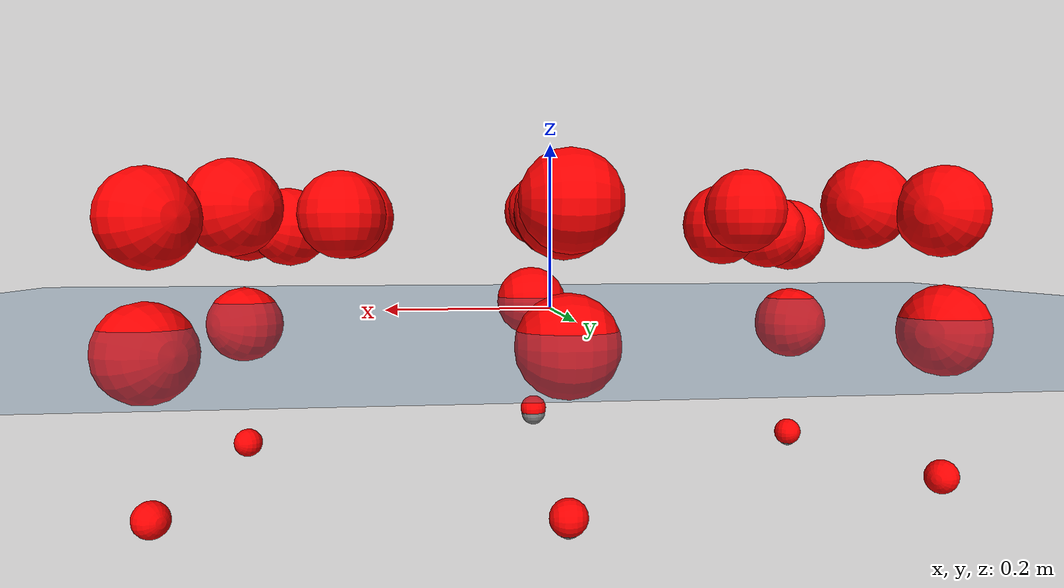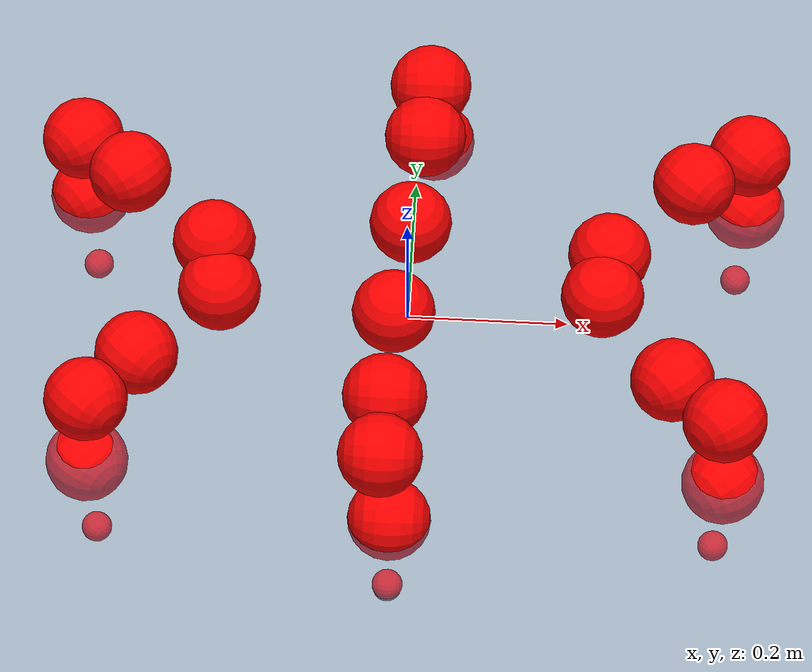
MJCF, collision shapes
<mujoco model="Golem">
  <compiler angle="radian" assetdir="assets" balanceinertia="true" inertiafromgeom="false"/>

  <option timestep="0.005" density="1.2" viscosity="2e-05"/>

  <size nkey="1"/>

  <visual>
    <quality shadowsize="8192"/>
    <map shadowclip="0.5"/>
  </visual>

  <default>
    <default class="/">
      <joint armature="0.01" damping="0.01" frictionloss="0.01"/>
      <geom contype="0" conaffinity="0" group="1" solref="-1000 -80"/>
      <site size="0.01 0.005 0.005" group="5"/>
      <general forcelimited="true" biastype="affine" gainprm="25" biasprm="0 -25 -0.5"/>
      <default class="visual">
        <geom type="mesh" group="2"/>
      </default>
      <default class="collision">
        <geom group="3"/>
      </default>
      <default class="foot">
        <geom size="0.01 0 0" condim="6" group="4" priority="1" solimp="0.015 1 0.01"/>
      </default>
      <default class="reward_collision_sphere">
        <geom group="5" rgba="1 0 0 1"/>
      </default>
    </default>
  </default>

  <asset>
    <texture type="skybox" colorspace="auto" name="//unnamed_texture_0" builtin="gradient" rgb1="0.95 0.95 0.95" rgb2="0.95 0.95 0.95" width="100" height="600"/>
    <texture type="2d" colorspace="auto" name="texplane" builtin="checker" rgb1="0.345 0.575 0.748" rgb2="0.345 0.575 0.748" markrgb="1 1 1" width="512" height="512"/>
    <material name="MatPlane" class="/" texture="texplane" texuniform="true" texrepeat="2 2" specular="0.9"/>
    <mesh name="body" class="/" file="body.stl" scale="0.001 0.001 0.001"/>
    <mesh name="coxa" class="/" file="coxa.stl" scale="0.001 0.001 0.001"/>
    <mesh name="femur" class="/" file="femur.stl" scale="0.001 0.001 0.001"/>
    <mesh name="tibia" class="/" file="tibia.stl" scale="0.001 0.001 0.001"/>
    <mesh name="tarsus" class="/" file="tarsus.stl" scale="0.001 0.001 0.001"/>
  </asset>

  <worldbody>
    <geom name="floor" class="/" size="100 100 0.125" type="plane" group="0" material="MatPlane"/>
    <light name="toplight_shadow" class="/" pos="0 0 5" dir="0.0990148 0.0990148 -0.990148" type="directional" ambient="0.04 0.04 0.04" diffuse="0.55 0.55 0.55" specular="0.12 0.12 0.12"/>
    <light name="toplight_fill" class="/" pos="0 0 5" dir="0.0990148 0.0990148 -0.990148" type="directional" castshadow="false" ambient="0.04 0.04 0.04" diffuse="0.3 0.3 0.3" specular="0.08 0.08 0.08"/>
    <body name="trunk" pos="-0.00172717 -2.44748e-05 0.0116776" quat="0.999996 0.00103365 0.00269471 0.000504279">
      <inertial pos="0.000591808 -0.00956202 0.00986857" quat="0.999666 0.0235518 0.00849805 -0.00637859" mass="6.65509" diaginertia="0.0725075 0.00273062 0.0681849"/>
      <joint name="//unnamed_joint_0" type="free"/>
      <geom name="//unnamed_geom_1" class="/" pos="0 0 0.0975087" quat="1 0 0 0" type="mesh" rgba="0.9 0.9 0.9 1" mesh="body"/>
      <site name="imu" class="/" pos="0.227041 0.00154701 0.100812" size="0.0127892"/>
      <camera name="track" class="/" pos="0 -1.56221 0" quat="0.707107 0.707107 0 0" mode="trackcom"/>
      <camera name="ego_camera" class="/" pos="0.199171 0 0.152357" quat="-0.5 -0.5 0.5 0.5"/>
      <body name="coxa_RR" pos="-0.261356 -0.0690693 0.0915263" quat="0.379006 0.00154946 -0.00518258 -0.925379">
        <inertial pos="0.0128619 0.00744774 -0.000209456" quat="0.998628 0.0523443 -0.000777403 0.000962507" mass="0.386556" diaginertia="0.083915 0.00285677 0.0942229"/>
        <joint name="coxa_joint_RR" class="/" pos="0 0 0" axis="-0.00508272 0.000926074 -0.999987" range="-3.02211 3.1039" armature="0.0149591" damping="0" frictionloss="0.00606112"/>
        <geom name="//unnamed_geom_2" class="/" type="mesh" rgba="0.2 0.2 0.2 1" mesh="coxa"/>
        <geom name="//unnamed_geom_3" class="reward_collision_sphere" size="0.0511569" pos="-0.0459626 0 0"/>
        <body name="femur_RR" pos="0.08632 -0.000277582 -0.00773276" quat="0.499964 -0.50015 0.499853 0.500033">
          <inertial pos="-0.000347769 0.00493119 -0.0115587" quat="0.999999 0.000918793 -0.000126476 0.000378539" mass="0.423087" diaginertia="0.086487 0.0029139 0.0953278"/>
          <joint name="femur_joint_RR" class="/" pos="0 0 0" axis="0.0513583 0.011785 -0.998611" stiffness="0.0132707" range="-3.20888 3.10986" armature="0.0164105" damping="0.027974" frictionloss="0.0152063"/>
          <geom name="//unnamed_geom_4" class="/" type="mesh" rgba="0.9 0.9 0.9 1" mesh="femur"/>
          <geom name="//unnamed_geom_5" class="reward_collision_sphere" size="0.0511569"/>
          <body name="tibia_RR" pos="0.00541699 -0.0859139 0.0075919" quat="-5.28936e-06 1 -4.18619e-06 -4.76677e-06">
            <inertial pos="0.00563607 -0.0106569 0.0116411" quat="0.998572 -0.0380442 0.0374755 0.0012004" mass="0.451007" diaginertia="0.102528 0.00317291 0.0863054"/>
            <joint name="tibia_joint_RR" class="/" pos="0 0 0" axis="0.00318221 -0.00221016 0.999992" stiffness="0.000103439" range="-3.1332 3.31217" armature="0.0121912" damping="0" frictionloss="0.0122078"/>
            <geom name="//unnamed_geom_6" class="/" type="mesh" rgba="0.2 0.2 0.2 1" mesh="tibia"/>
            <geom name="//unnamed_geom_7" class="reward_collision_sphere" size="0.0511569"/>
            <body name="tarsus_RR" pos="0.130193 0.0110976 -0.000855027" quat="0.999984 0.00540245 0.000567349 -0.00122164">
              <inertial pos="0.0877866 0.0125823 -0.00481399" quat="0.496528 0.505981 0.504399 0.492976" mass="0.436558" diaginertia="0.083045 0.00232551 0.075698"/>
              <joint name="tarsus_joint_RR" class="/" pos="0 0 0" axis="-0.0112747 -0.00675606 0.999914" stiffness="0.0167342" range="-3.1207 3.14295" armature="0.0142016" damping="0.0493697" frictionloss="0.0137271"/>
              <geom name="//unnamed_geom_8" class="/" type="mesh" rgba="0.9 0.9 0.9 1" mesh="tarsus"/>
              <geom name="foot_1" class="foot" size="0.0135022" pos="0.171594 0 0" quat="0 -0.707107 0 0.707107"/>
              <geom name="//unnamed_geom_10" class="reward_collision_sphere" size="0.0511569"/>
              <geom name="//unnamed_geom_11" class="reward_collision_sphere" size="0.0191838" pos="0.164699 0 0"/>
              <site name="foot_1" class="foot" pos="0.171594 0 0" quat="0 -0.707107 0 0.707107" size="0.0127892"/>
            </body>
          </body>
        </body>
      </body>
      <body name="coxa_RM" pos="-0.0126629 -0.111712 0.104167" quat="0.707724 0.000521908 0.00117769 -0.706488">
        <inertial pos="0.000384932 0.00736057 0.013557" quat="0.999845 0.0122124 0.011073 -0.00619036" mass="0.456838" diaginertia="0.104566 0.00366799 0.0858082"/>
        <joint name="coxa_joint_RM" class="/" pos="0 0 0" axis="-0.00709864 0.00406171 -0.999967" range="-3.12148 3.1659" armature="0.0167405" damping="0" frictionloss="0.00794864"/>
        <geom name="//unnamed_geom_12" class="/" type="mesh" rgba="0.2 0.2 0.2 1" mesh="coxa"/>
        <geom name="//unnamed_geom_13" class="reward_collision_sphere" size="0.0511569" pos="-0.0459626 0 0"/>
        <body name="femur_RM" pos="0.0827179 -0.00413563 0.0138051" quat="0.501543 -0.502973 0.501016 0.494425">
          <inertial pos="0.00242097 0.00745443 0.000922248" quat="0.998171 -0.0286008 0.01323 -0.0515903" mass="0.396461" diaginertia="0.0721896 0.0030819 0.0807164"/>
          <joint name="femur_joint_RM" class="/" pos="0 0 0" axis="-0.0198286 -0.00387978 -0.999796" range="-2.93781 2.93596" armature="0.00425084" damping="0" frictionloss="0.0123744"/>
          <geom name="//unnamed_geom_14" class="/" type="mesh" rgba="0.9 0.9 0.9 1" mesh="femur"/>
          <geom name="//unnamed_geom_15" class="reward_collision_sphere" size="0.0511569"/>
          <body name="tibia_RM" pos="0.00257946 -0.0815244 -0.000772169" quat="-0.000253395 1 -0.00016665 -0.000770973">
            <inertial pos="0.00415604 0.00104792 0.0112606" quat="0.99879 0.0312737 -0.0338272 -0.0172191" mass="0.53782" diaginertia="0.0896251 0.00328245 0.0795584"/>
            <joint name="tibia_joint_RM" class="/" pos="0 0 0" axis="0.00756287 0.00495851 0.999959" range="-2.94331 3.34314" armature="0.0195487" damping="0.0395423" frictionloss="0.015458"/>
            <geom name="//unnamed_geom_16" class="/" type="mesh" rgba="0.2 0.2 0.2 1" mesh="tibia"/>
            <geom name="//unnamed_geom_17" class="reward_collision_sphere" size="0.0511569"/>
            <body name="tarsus_RM" pos="0.134342 0.00988577 -0.0126013" quat="0.999997 0.000611662 -0.00239124 -0.000796979">
              <inertial pos="0.0974328 0.000580046 0.0054847" quat="0.537009 0.479175 0.493126 0.488712" mass="0.415663" diaginertia="0.0863266 0.0028996 0.0841334"/>
              <joint name="tarsus_joint_RM" class="/" pos="0 0 0" axis="0.00992876 0.00585473 0.999934" stiffness="0.0258165" range="-3.13924 2.86165" armature="0.012101" damping="0.0668038" frictionloss="0.0140142"/>
              <geom name="//unnamed_geom_18" class="/" type="mesh" rgba="0.9 0.9 0.9 1" mesh="tarsus"/>
              <geom name="foot_2" class="foot" size="0.0179691" pos="0.171594 0 0" quat="0 -0.707107 0 0.707107"/>
              <geom name="//unnamed_geom_20" class="reward_collision_sphere" size="0.0511569"/>
              <geom name="//unnamed_geom_21" class="reward_collision_sphere" size="0.0191838" pos="0.164699 0 0"/>
              <site name="foot_2" class="foot" pos="0.171594 0 0" quat="0 -0.707107 0 0.707107" size="0.0127892"/>
            </body>
          </body>
        </body>
      </body>
      <body name="coxa_RF" pos="0.273534 -0.0619795 0.102195" quat="0.921882 -0.00181851 0.000925526 -0.387465">
        <inertial pos="-0.0113919 0.0110702 0.00197227" quat="0.999922 0.00597651 -0.00776794 -0.0077572" mass="0.432779" diaginertia="0.0746075 0.00296652 0.0839108"/>
        <joint name="coxa_joint_RF" class="/" pos="0 0 0" axis="-0.0149596 -0.0507713 -0.998598" stiffness="0.00473444" range="-3.12983 3.16413" armature="0.011957" damping="0.0454014" frictionloss="0.0158942"/>
        <geom name="//unnamed_geom_22" class="/" type="mesh" rgba="0.2 0.2 0.2 1" mesh="coxa"/>
        <geom name="//unnamed_geom_23" class="reward_collision_sphere" size="0.0511569" pos="-0.0459626 0 0"/>
        <body name="femur_RF" pos="0.0936263 -0.0138891 -0.0101453" quat="0.499228 -0.495244 0.500447 0.505032">
          <inertial pos="-0.00122633 0.00018441 0.00547787" quat="0.999397 -0.0313348 -0.0118038 -0.0092128" mass="0.446294" diaginertia="0.0900162 0.00307949 0.0877141"/>
          <joint name="femur_joint_RF" class="/" pos="0 0 0" axis="0.00836321 -0.016267 -0.999833" stiffness="0.0416111" range="-3.26191 3.00402" armature="0.0128965" damping="0" frictionloss="0.0122612"/>
          <geom name="//unnamed_geom_24" class="/" type="mesh" rgba="0.9 0.9 0.9 1" mesh="femur"/>
          <geom name="//unnamed_geom_25" class="reward_collision_sphere" size="0.0511569"/>
          <body name="tibia_RF" pos="-0.00657578 -0.0852241 0.00511763" quat="-0.000434779 1 0.000501098 -0.000703079">
            <inertial pos="-0.000670449 0.00952418 0.00121049" quat="0.999667 -0.0117254 0.0199602 -0.0114276" mass="0.455344" diaginertia="0.0968187 0.00336525 0.0820532"/>
            <joint name="tibia_joint_RF" class="/" pos="0 0 0" axis="0.00483065 0.000412786 0.999988" stiffness="0.0469393" range="-3.13871 3.33985" armature="0.0125844" damping="0.079738" frictionloss="0.0130662"/>
            <geom name="//unnamed_geom_26" class="/" type="mesh" rgba="0.2 0.2 0.2 1" mesh="tibia"/>
            <geom name="//unnamed_geom_27" class="reward_collision_sphere" size="0.0511569"/>
            <body name="tarsus_RF" pos="0.138245 0.0111495 -0.00101538" quat="0.999991 0.000156689 0.00336491 -0.00250019">
              <inertial pos="0.0900903 0.000221095 -0.00302214" quat="0.500023 0.500044 0.499709 0.500224" mass="0.430071" diaginertia="0.0793162 0.00251059 0.0831483"/>
              <joint name="tarsus_joint_RF" class="/" pos="0 0 0" axis="-0.00529249 -0.00644015 0.999965" range="-3.1658 3.18203" armature="0.0115857" damping="0.0147326" frictionloss="0.0134936"/>
              <geom name="//unnamed_geom_28" class="/" type="mesh" rgba="0.9 0.9 0.9 1" mesh="tarsus"/>
              <geom name="foot_3" class="foot" size="0.0123861" pos="0.171594 0 0" quat="0 -0.707107 0 0.707107"/>
              <geom name="//unnamed_geom_30" class="reward_collision_sphere" size="0.0511569"/>
              <geom name="//unnamed_geom_31" class="reward_collision_sphere" size="0.0191838" pos="0.164699 0 0"/>
              <site name="foot_3" class="foot" pos="0.171594 0 0" quat="0 -0.707107 0 0.707107" size="0.0127892"/>
            </body>
          </body>
        </body>
      </body>
      <body name="coxa_LR" pos="-0.271687 0.0556876 0.107477" quat="0.382819 -2.15042e-05 -0.000141534 0.923823">
        <inertial pos="-0.000662573 0.0044617 0.00906052" quat="0.999094 -0.0259143 -0.0329611 0.00722643" mass="0.515417" diaginertia="0.0973855 0.00296948 0.0964275"/>
        <joint name="coxa_joint_LR" class="/" pos="0 0 0" axis="0.04735 0.0129815 -0.998794" range="-3.16328 3.1656" armature="0.00961052" damping="0.0104552" frictionloss="0.00686218"/>
        <geom name="//unnamed_geom_32" class="/" type="mesh" rgba="0.2 0.2 0.2 1" mesh="coxa"/>
        <geom name="//unnamed_geom_33" class="reward_collision_sphere" size="0.0511569" pos="-0.0459626 0 0"/>
        <body name="femur_LR" pos="0.100307 0.0124624 0.00384881" quat="0.502439 -0.498101 0.501642 0.497801">
          <inertial pos="-0.000276992 0.0055869 0.0128747" quat="0.999501 -0.0059646 -0.0306954 -0.00442994" mass="0.438487" diaginertia="0.09593 0.00332992 0.0922082"/>
          <joint name="femur_joint_LR" class="/" pos="0 0 0" axis="-0.0651072 -0.00111096 0.997878" range="-3.10661 3.13714" armature="0.00802844" damping="0" frictionloss="0.0134174"/>
          <geom name="//unnamed_geom_34" class="/" type="mesh" rgba="0.9 0.9 0.9 1" mesh="femur"/>
          <geom name="//unnamed_geom_35" class="reward_collision_sphere" size="0.0511569"/>
          <body name="tibia_LR" pos="0.00932165 -0.083902 0.00785488" quat="-5.6202e-06 1 -0.000109003 4.76034e-06">
            <inertial pos="0.000771162 -0.0106933 -0.000578783" quat="0.999922 -0.00892114 -0.00837316 -0.0023189" mass="0.384619" diaginertia="0.0880746 0.00260891 0.0652506"/>
            <joint name="tibia_joint_LR" class="/" pos="0 0 0" axis="0.0559414 0.0407374 -0.997603" range="-3.33573 3.41828" armature="0.00414297" damping="0.042486" frictionloss="0.00757479"/>
            <geom name="//unnamed_geom_36" class="/" type="mesh" rgba="0.2 0.2 0.2 1" mesh="tibia"/>
            <geom name="//unnamed_geom_37" class="reward_collision_sphere" size="0.0511569"/>
            <body name="tarsus_LR" pos="0.132402 0.00464557 0.00453659" quat="0.999999 0.000341118 0.000572136 0.00131624">
              <inertial pos="0.0791006 0.00137594 0.0139826" quat="0.499691 0.500758 0.499745 0.499805" mass="0.413703" diaginertia="0.0748483 0.0029446 0.0797584"/>
              <joint name="tarsus_joint_LR" class="/" pos="0 0 0" axis="0.0145679 0.00642955 -0.999873" stiffness="0.00913525" range="-3.28685 3.27616" armature="0.0187762" damping="0" frictionloss="0.0128441"/>
              <geom name="//unnamed_geom_38" class="/" type="mesh" rgba="0.9 0.9 0.9 1" mesh="tarsus"/>
              <geom name="foot_4" class="foot" size="0.0125261" pos="0.171594 0 0" quat="0.707107 0 -0.707107 0"/>
              <geom name="//unnamed_geom_40" class="reward_collision_sphere" size="0.0511569"/>
              <geom name="//unnamed_geom_41" class="reward_collision_sphere" size="0.0191838" pos="0.164699 0 0"/>
              <site name="foot_4" class="foot" pos="0.171594 0 0" quat="0.707107 0 -0.707107 0" size="0.0127892"/>
            </body>
          </body>
        </body>
      </body>
      <body name="coxa_LM" pos="0.00122745 0.112228 0.103505" quat="0.706426 0.000540992 -0.000854844 0.707786">
        <inertial pos="-0.000802696 0.0113743 -0.0132486" quat="0.999561 0.0260826 -0.0026578 0.0138059" mass="0.391775" diaginertia="0.0916683 0.00300172 0.085206"/>
        <joint name="coxa_joint_LM" class="/" pos="0 0 0" axis="-0.0136227 0.0472166 -0.998792" stiffness="0.0111004" range="-3.14152 3.2243" armature="0.0213122" damping="0" frictionloss="0.0130316"/>
        <geom name="//unnamed_geom_42" class="/" type="mesh" rgba="0.2 0.2 0.2 1" mesh="coxa"/>
        <geom name="//unnamed_geom_43" class="reward_collision_sphere" size="0.0511569" pos="-0.0459626 0 0"/>
        <body name="femur_LM" pos="0.0862062 -0.0121162 -0.00106412" quat="0.499935 -0.500287 0.499912 0.499865">
          <inertial pos="0.0126672 -0.00733815 0.0076556" quat="0.999998 -0.00173107 -3.83822e-05 -0.000495861" mass="0.448349" diaginertia="0.101353 0.00305295 0.0908902"/>
          <joint name="femur_joint_LM" class="/" pos="0 0 0" axis="-0.0178094 0.0561541 0.998263" range="-3.13339 3.11856" armature="0.0137901" damping="0.0293616" frictionloss="0.00673363"/>
          <geom name="//unnamed_geom_44" class="/" type="mesh" rgba="0.9 0.9 0.9 1" mesh="femur"/>
          <geom name="//unnamed_geom_45" class="reward_collision_sphere" size="0.0511569"/>
          <body name="tibia_LM" pos="-0.00644051 -0.0741324 -0.00339298" quat="-0.000883263 0.999998 0.00114375 0.000959055">
            <inertial pos="-0.00226708 0.000856457 -0.00876138" quat="0.998875 -0.00680813 -0.0430825 0.0186288" mass="0.489625" diaginertia="0.0827014 0.00299276 0.093788"/>
            <joint name="tibia_joint_LM" class="/" pos="0 0 0" axis="-0.0116511 0.00758916 -0.999903" range="-3.15151 2.92113" armature="0.0121667" damping="0.0328287" frictionloss="0.00932327"/>
            <geom name="//unnamed_geom_46" class="/" type="mesh" rgba="0.2 0.2 0.2 1" mesh="tibia"/>
            <geom name="//unnamed_geom_47" class="reward_collision_sphere" size="0.0511569"/>
            <body name="tarsus_LM" pos="0.137698 0.011147 0.00583679" quat="1 0.000287813 -0.000383597 1.40211e-05">
              <inertial pos="0.0798269 0.00431087 0.00405375" quat="0.500405 0.499184 0.500186 0.500224" mass="0.416629" diaginertia="0.0813922 0.0028152 0.0728669"/>
              <joint name="tarsus_joint_LM" class="/" pos="0 0 0" axis="-0.0142819 -0.00350663 -0.999892" stiffness="0.0364409" range="-3.14714 3.1257" armature="0.0135059" damping="0.0499233" frictionloss="0.0147982"/>
              <geom name="//unnamed_geom_48" class="/" type="mesh" rgba="0.9 0.9 0.9 1" mesh="tarsus"/>
              <geom name="foot_5" class="foot" size="0.0133434" pos="0.171594 0 0" quat="0.707107 0 -0.707107 0"/>
              <geom name="//unnamed_geom_50" class="reward_collision_sphere" size="0.0511569"/>
              <geom name="//unnamed_geom_51" class="reward_collision_sphere" size="0.0191838" pos="0.164699 0 0"/>
              <site name="foot_5" class="foot" pos="0.171594 0 0" quat="0.707107 0 -0.707107 0" size="0.0127892"/>
            </body>
          </body>
        </body>
      </body>
      <body name="coxa_LF" pos="0.281074 0.0647863 0.103397" quat="0.923808 0.000290194 -0.000412383 0.382855">
        <inertial pos="-0.00912299 -0.000710218 -0.0038582" quat="0.998262 0.00521138 -0.0252721 0.0529753" mass="0.42064" diaginertia="0.0697082 0.00279905 0.0821109"/>
        <joint name="coxa_joint_LF" class="/" pos="0 0 0" axis="-0.00368162 -0.00606974 -0.999975" range="-3.16058 3.35703" armature="0.0165955" damping="0.0228477" frictionloss="0.0127656"/>
        <geom name="//unnamed_geom_52" class="/" type="mesh" rgba="0.2 0.2 0.2 1" mesh="coxa"/>
        <geom name="//unnamed_geom_53" class="reward_collision_sphere" size="0.0511569" pos="-0.0459626 0 0"/>
        <body name="femur_LF" pos="0.102532 0.00329596 0.00462114" quat="0.498541 -0.500255 0.499827 0.501372">
          <inertial pos="0.0099459 -0.00873001 -0.00171842" quat="0.99969 0.0198778 0.00418752 -0.014418" mass="0.437091" diaginertia="0.0948022 0.00290647 0.0808805"/>
          <joint name="femur_joint_LF" class="/" pos="0 0 0" axis="0.0579941 -0.00503056 0.998304" stiffness="0.0252303" range="-2.91662 3.143" armature="0.0124454" damping="0.0447982" frictionloss="0.0125113"/>
          <geom name="//unnamed_geom_54" class="/" type="mesh" rgba="0.9 0.9 0.9 1" mesh="femur"/>
          <geom name="//unnamed_geom_55" class="reward_collision_sphere" size="0.0511569"/>
          <body name="tibia_LF" pos="0.0121208 -0.0887115 -0.0111172" quat="-0.00203139 0.999991 0.00187468 -0.003253">
            <inertial pos="0.00966494 0.000531544 0.00120059" quat="0.997622 0.0502433 -0.0411645 0.0230744" mass="0.355114" diaginertia="0.0932731 0.00289553 0.0866298"/>
            <joint name="tibia_joint_LF" class="/" pos="0 0 0" axis="0.00598308 -0.00743593 -0.999954" stiffness="0.0116008" range="-3.13139 3.02907" armature="0.0137411" damping="0.0523985" frictionloss="0.0137936"/>
            <geom name="//unnamed_geom_56" class="/" type="mesh" rgba="0.2 0.2 0.2 1" mesh="tibia"/>
            <geom name="//unnamed_geom_57" class="reward_collision_sphere" size="0.0511569"/>
            <body name="tarsus_LF" pos="0.131571 0.00961907 -0.00458878" quat="1 0.000182911 2.16309e-05 -0.000613064">
              <inertial pos="0.0988889 0.00229276 0.00699026" quat="0.501527 0.490865 0.509529 0.497897" mass="0.547663" diaginertia="0.0959601 0.00336851 0.0944379"/>
              <joint name="tarsus_joint_LF" class="/" pos="0 0 0" axis="0.0222303 -0.00222499 -0.99975" stiffness="0.0342344" range="-3.07957 3.01321" armature="0.0167968" damping="0" frictionloss="0.0133663"/>
              <geom name="//unnamed_geom_58" class="/" type="mesh" rgba="0.9 0.9 0.9 1" mesh="tarsus"/>
              <geom name="foot_6" class="foot" size="0.00882807" pos="0.171594 0 0" quat="0.707107 0 -0.707107 0"/>
              <geom name="//unnamed_geom_60" class="reward_collision_sphere" size="0.0511569"/>
              <geom name="//unnamed_geom_61" class="reward_collision_sphere" size="0.0191838" pos="0.164699 0 0"/>
              <site name="foot_6" class="foot" pos="0.171594 0 0" quat="0.707107 0 -0.707107 0" size="0.0127892"/>
            </body>
          </body>
        </body>
      </body>
    </body>
  </worldbody>

  <contact>
    <pair class="/" geom1="floor" geom2="foot_1" name="//unnamed_contact_0"/>
    <pair class="/" geom1="floor" geom2="foot_2" name="//unnamed_contact_1"/>
    <pair class="/" geom1="floor" geom2="foot_3" name="//unnamed_contact_2"/>
    <pair class="/" geom1="floor" geom2="foot_4" name="//unnamed_contact_3"/>
    <pair class="/" geom1="floor" geom2="foot_5" name="//unnamed_contact_4"/>
    <pair class="/" geom1="floor" geom2="foot_6" name="//unnamed_contact_5"/>
  </contact>

  <actuator>
    <general name="coxa_joint_RR" class="/" joint="coxa_joint_RR" forcerange="-9.27447 9.27447" gainprm="29.7735" biasprm="0 -29.7735 -0.580548"/>
    <general name="femur_joint_RR" class="/" joint="femur_joint_RR" forcerange="-6.68205 6.68205" gainprm="29.7735" biasprm="0 -29.7735 -0.580548"/>
    <general name="tibia_joint_RR" class="/" joint="tibia_joint_RR" forcerange="-13.039 13.039" gainprm="29.7735" biasprm="0 -29.7735 -0.580548"/>
    <general name="tarsus_joint_RR" class="/" joint="tarsus_joint_RR" forcerange="-7.6507 7.6507" gainprm="29.7735" biasprm="0 -29.7735 -0.580548"/>
    <general name="coxa_joint_RM" class="/" joint="coxa_joint_RM" forcerange="-4.46477 4.46477" gainprm="29.7735" biasprm="0 -29.7735 -0.580548"/>
    <general name="femur_joint_RM" class="/" joint="femur_joint_RM" forcerange="-9.18641 9.18641" gainprm="29.7735" biasprm="0 -29.7735 -0.580548"/>
    <general name="tibia_joint_RM" class="/" joint="tibia_joint_RM" forcerange="-7.56969 7.56969" gainprm="29.7735" biasprm="0 -29.7735 -0.580548"/>
    <general name="tarsus_joint_RM" class="/" joint="tarsus_joint_RM" forcerange="-13.0634 13.0634" gainprm="29.7735" biasprm="0 -29.7735 -0.580548"/>
    <general name="coxa_joint_RF" class="/" joint="coxa_joint_RF" forcerange="-5.87821 5.87821" gainprm="29.7735" biasprm="0 -29.7735 -0.580548"/>
    <general name="femur_joint_RF" class="/" joint="femur_joint_RF" forcerange="-9.46566 9.46566" gainprm="29.7735" biasprm="0 -29.7735 -0.580548"/>
    <general name="tibia_joint_RF" class="/" joint="tibia_joint_RF" forcerange="-8.94375 8.94375" gainprm="29.7735" biasprm="0 -29.7735 -0.580548"/>
    <general name="tarsus_joint_RF" class="/" joint="tarsus_joint_RF" forcerange="-9.29851 9.29851" gainprm="29.7735" biasprm="0 -29.7735 -0.580548"/>
    <general name="coxa_joint_LR" class="/" joint="coxa_joint_LR" forcerange="-5.26006 5.26006" gainprm="29.7735" biasprm="0 -29.7735 -0.580548"/>
    <general name="femur_joint_LR" class="/" joint="femur_joint_LR" forcerange="-9.48148 9.48148" gainprm="29.7735" biasprm="0 -29.7735 -0.580548"/>
    <general name="tibia_joint_LR" class="/" joint="tibia_joint_LR" forcerange="-6.22656 6.22656" gainprm="29.7735" biasprm="0 -29.7735 -0.580548"/>
    <general name="tarsus_joint_LR" class="/" joint="tarsus_joint_LR" forcerange="-5.02932 5.02932" gainprm="29.7735" biasprm="0 -29.7735 -0.580548"/>
    <general name="coxa_joint_LM" class="/" joint="coxa_joint_LM" forcerange="-12.9531 12.9531" gainprm="29.7735" biasprm="0 -29.7735 -0.580548"/>
    <general name="femur_joint_LM" class="/" joint="femur_joint_LM" forcerange="-8.02673 8.02673" gainprm="29.7735" biasprm="0 -29.7735 -0.580548"/>
    <general name="tibia_joint_LM" class="/" joint="tibia_joint_LM" forcerange="-5.40178 5.40178" gainprm="29.7735" biasprm="0 -29.7735 -0.580548"/>
    <general name="tarsus_joint_LM" class="/" joint="tarsus_joint_LM" forcerange="-4.5898 4.5898" gainprm="29.7735" biasprm="0 -29.7735 -0.580548"/>
    <general name="coxa_joint_LF" class="/" joint="coxa_joint_LF" forcerange="-12.3638 12.3638" gainprm="29.7735" biasprm="0 -29.7735 -0.580548"/>
    <general name="femur_joint_LF" class="/" joint="femur_joint_LF" forcerange="-12.2644 12.2644" gainprm="29.7735" biasprm="0 -29.7735 -0.580548"/>
    <general name="tibia_joint_LF" class="/" joint="tibia_joint_LF" forcerange="-10.7101 10.7101" gainprm="29.7735" biasprm="0 -29.7735 -0.580548"/>
    <general name="tarsus_joint_LF" class="/" joint="tarsus_joint_LF" forcerange="-11.3653 11.3653" gainprm="29.7735" biasprm="0 -29.7735 -0.580548"/>
  </actuator>

  <sensor>
    <gyro site="imu" name="imu_angular_velocity"/>
    <velocimeter site="imu" name="imu_linear_velocity"/>
    <framelinvel objtype="site" objname="foot_1" name="foot_1_global_linear_velocity"/>
    <framelinvel objtype="site" objname="foot_2" name="foot_2_global_linear_velocity"/>
    <framelinvel objtype="site" objname="foot_3" name="foot_3_global_linear_velocity"/>
    <framelinvel objtype="site" objname="foot_4" name="foot_4_global_linear_velocity"/>
    <framelinvel objtype="site" objname="foot_5" name="foot_5_global_linear_velocity"/>
    <framelinvel objtype="site" objname="foot_6" name="foot_6_global_linear_velocity"/>
  </sensor>

  <keyframe>
    <key name="home" qpos="0 0 0.1457 1 0 0 0 0 0 0 0 0 0 0 0 0 0 0 0 0 0 0 0 0 0 0 0 0 0 0 0"/>
  </keyframe>
</mujoco>
